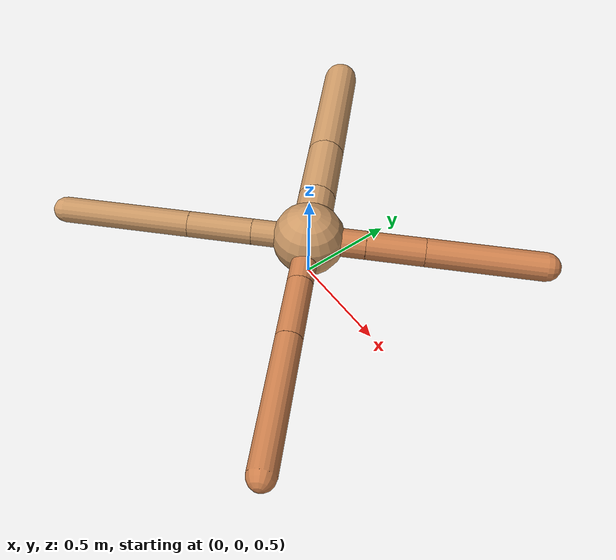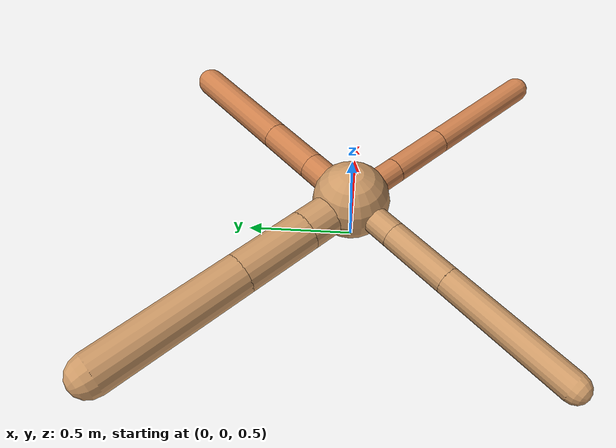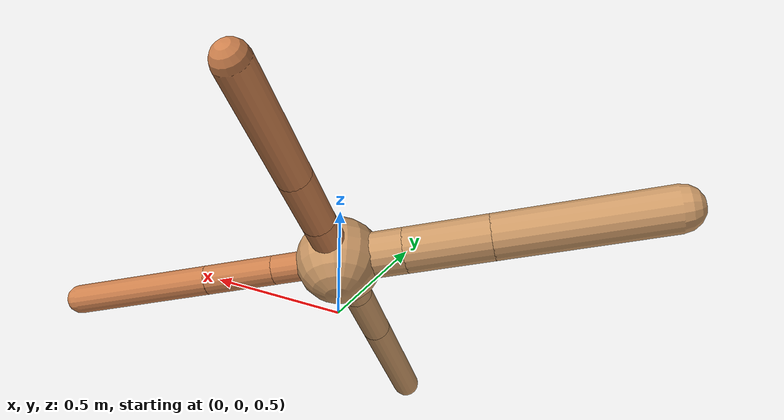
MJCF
<?xml version="1.0" ?>
<mujoco model="ant">

	<compiler angle="degree" coordinate="local" inertiafromgeom="true"/>

	<option integrator="RK4" timestep="0.01"/>

	<custom>

		<numeric data="0.0 0.0 0.55 1.0 0.0 0.0 0.0 0.0 1.0 0.0 -1.0 0.0 -1.0 0.0 1.0" name="init_qpos"/>

	</custom>

	<default>

		<joint armature="1" damping="1" limited="true"/>

		<geom conaffinity="0" condim="3" density="5.0" friction="1.5 0.1 0.1" margin="0.01" rgba="0.8 0.6 0.4 1"/>

	</default>

	<worldbody>

		<body name="torso" pos="0 0 0.75">

			<geom name="torso_geom" pos="0 0 0" size="0.18087513165808267" type="sphere"/>

			<!--joint armature="0" damping="0" limited="false" margin="0.01" name="root" pos="0 0 0" type="free"/-->

			<body name="front_left_leg" pos="0 0 0">

				<geom fromto="0 0 0 0.2 0.2 0" name="aux_1_geom" size="0.07031675725234343" type="capsule" rgba=".8 .5 .3 1"/>

				<body name="aux_1" pos="0.2 0.2 0">

					<joint axis="0 0 1" name="hip_1" pos="0.0 0.0 0.0" range="-40 40" type="hinge"/>

					<geom fromto="0 0 0 0.20165487977634666 0.20165487977634666 0" name="left_leg_geom" size="0.07031675725234343" type="capsule" rgba=".8 .5 .3 1"/>

					<body pos="0.20165487977634666 0.20165487977634666 0" name="front_left_foot">

						<joint axis="-1 1 0" name="ankle_1" pos="0.0 0.0 0.0" range="30 100" type="hinge"/>

						<geom fromto="0 0 0 0.4033097595526933 0.4033097595526933 0" name="left_ankle_geom" size="0.07031675725234343" type="capsule" rgba=".8 .5 .3 1"/>

					</body>

				</body>

			</body>

			<body name="front_right_leg" pos="0 0 0">

				<geom fromto="0 0 0 -0.2 0.2 0" name="aux_2_geom" size="0.09643589018388973" type="capsule"/>

				<body name="aux_2" pos="-0.2 0.2 0">

					<joint axis="0 0 1" name="hip_2" pos="0.0 0.0 0.0" range="-40 40" type="hinge"/>

					<geom fromto="0 0 0 -0.24986742300965148 0.24986742300965148 0" name="right_leg_geom" size="0.09643589018388973" type="capsule"/>

					<body pos="-0.24986742300965148 0.24986742300965148 0" name="front_right_foot">

						<joint axis="1 1 0" name="ankle_2" pos="0.0 0.0 0.0" range="-100 -30" type="hinge"/>

						<geom fromto="0 0 0 -0.49973484601930296 0.49973484601930296 0" name="right_ankle_geom" size="0.09643589018388973" type="capsule"/>

					</body>

				</body>

			</body>

			<body name="left_back_leg" pos="0 0 0">

				<geom fromto="0 0 0 -0.2 -0.2 0" name="aux_3_geom" size="0.06484434646065985" type="capsule"/>

				<body name="aux_3" pos="-0.2 -0.2 0">

					<joint axis="0 0 1" name="hip_3" pos="0.0 0.0 0.0" range="-40 40" type="hinge"/>

					<geom fromto="0 0 0 -0.2286631976618607 -0.2286631976618607 0" name="back_leg_geom" size="0.06484434646065985" type="capsule"/>

					<body pos="-0.2286631976618607 -0.2286631976618607 0" name="left_back_foot">

						<joint axis="-1 1 0" name="ankle_3" pos="0.0 0.0 0.0" range="-100 -30" type="hinge"/>

						<geom fromto="0 0 0 -0.4573263953237214 -0.4573263953237214 0" name="third_ankle_geom" size="0.06484434646065985" type="capsule"/>

					</body>

				</body>

			</body>

			<body name="right_back_leg" pos="0 0 0">

				<geom fromto="0 0 0 0.2 -0.2 0" name="aux_4_geom" size="0.06262844029029825" type="capsule" rgba=".8 .5 .3 1"/>

				<body name="aux_4" pos="0.2 -0.2 0">

					<joint axis="0 0 1" name="hip_4" pos="0.0 0.0 0.0" range="-40 40" type="hinge"/>

					<geom fromto="0 0 0 0.21560711499609153 -0.21560711499609153 0" name="rightback_leg_geom" size="0.06262844029029825" type="capsule" rgba=".8 .5 .3 1"/>

					<body pos="0.21560711499609153 -0.21560711499609153 0" name="right_back_foot">

						<joint axis="1 1 0" name="ankle_4" pos="0.0 0.0 0.0" range="30 100" type="hinge"/>

						<geom fromto="0 0 0 0.43121422999218306 -0.43121422999218306 0" name="fourth_ankle_geom" size="0.06262844029029825" type="capsule" rgba=".8 .5 .3 1"/>

					</body>

				</body>

			</body>

		</body>

	</worldbody>

	<actuator>

		<motor ctrllimited="true" ctrlrange="-1.0 1.0" joint="hip_4" gear="150"/>

		<motor ctrllimited="true" ctrlrange="-1.0 1.0" joint="ankle_4" gear="150"/>

		<motor ctrllimited="true" ctrlrange="-1.0 1.0" joint="hip_1" gear="150"/>

		<motor ctrllimited="true" ctrlrange="-1.0 1.0" joint="ankle_1" gear="150"/>

		<motor ctrllimited="true" ctrlrange="-1.0 1.0" joint="hip_2" gear="150"/>

		<motor ctrllimited="true" ctrlrange="-1.0 1.0" joint="ankle_2" gear="150"/>

		<motor ctrllimited="true" ctrlrange="-1.0 1.0" joint="hip_3" gear="150"/>

		<motor ctrllimited="true" ctrlrange="-1.0 1.0" joint="ankle_3" gear="150"/>

	</actuator>

</mujoco>
